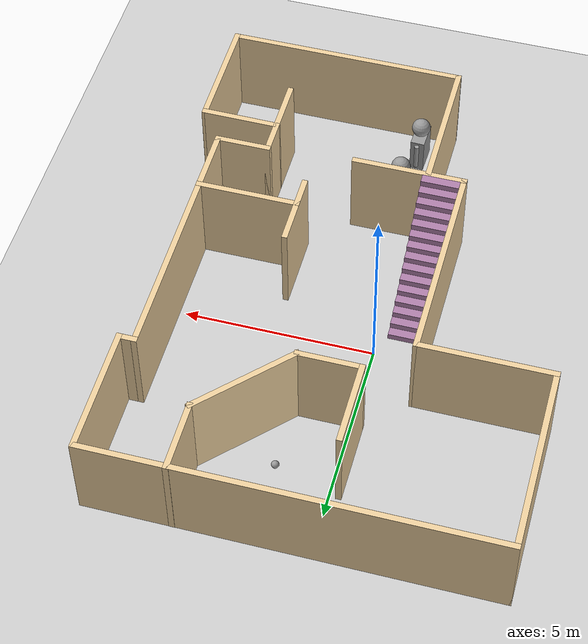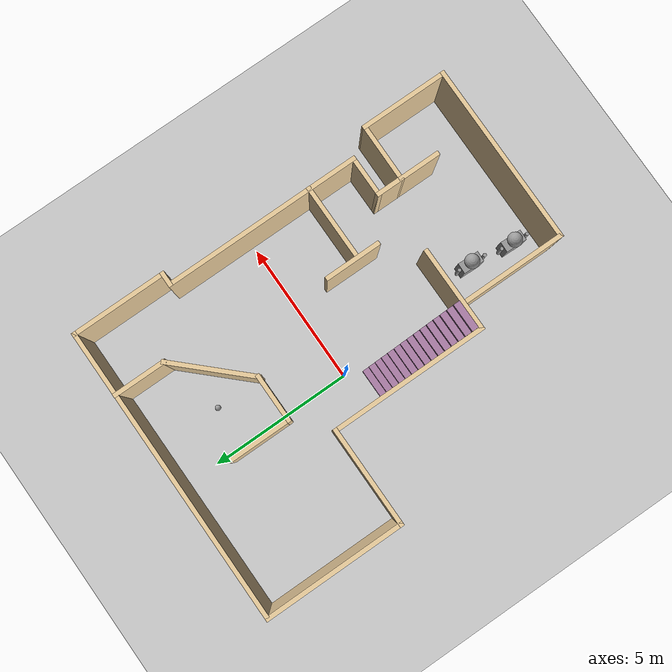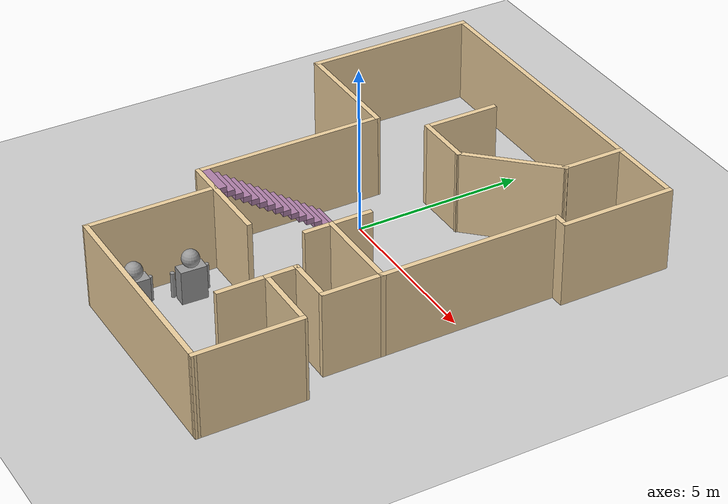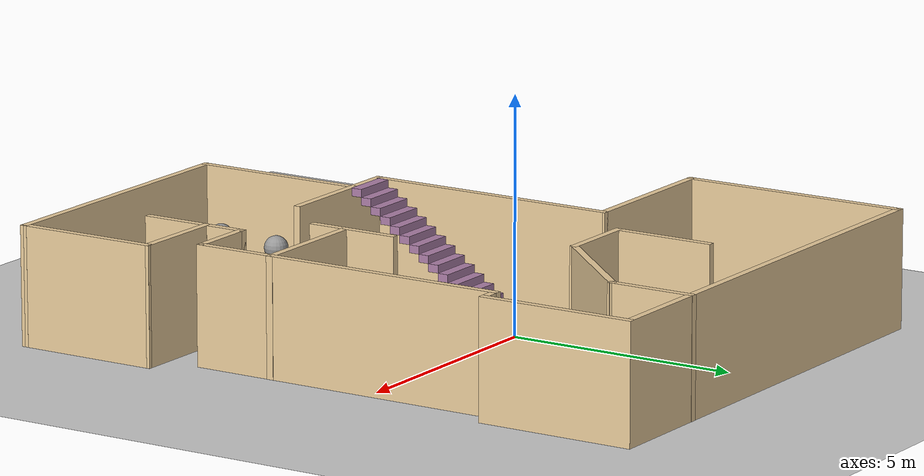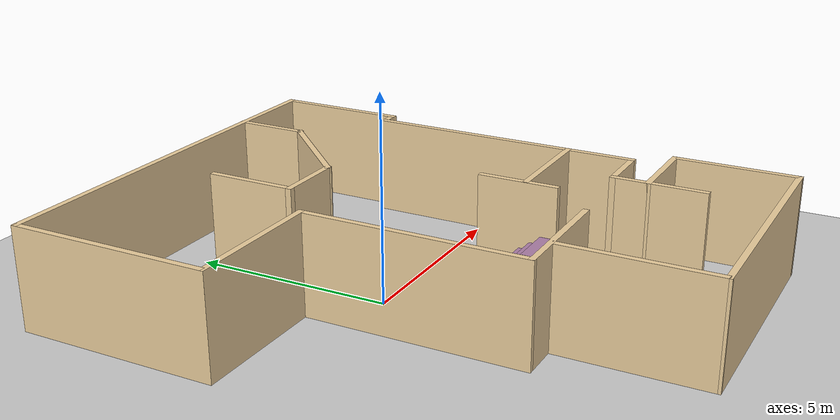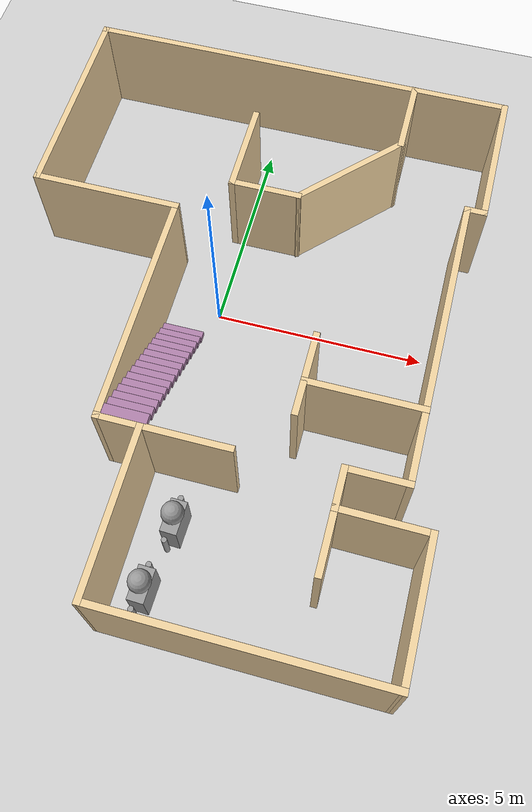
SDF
<sdf version="1.7">
 <world name="default">
  <plugin name="welcome" filename="libwelcome.so"/>
  <light name="sun" type="directional">
   <pose>0 0 10 0 -0 0</pose>
   <diffuse>0.8 0.8 0.8 1</diffuse>
   <specular>0.2 0.2 0.2 1</specular>
   <attenuation>
    <range>1000</range>
    <constant>0.9</constant>
    <linear>0.01</linear>
    <quadratic>0.001</quadratic>
   </attenuation>
   <direction>-0.5 0.1 -0.9</direction>
   <spot><inner_angle>0</inner_angle><outer_angle>0</outer_angle><falloff>0</falloff></spot>
  </light>
  <model name="ground_plane">
   <static>1</static>
   <link name="link">
    <collision name="collision">
     <geometry><plane><normal>0 0 1</normal><size>100 100</size></plane></geometry>
     <surface>
      <contact><collide_bitmask>65535</collide_bitmask></contact>
      <friction><ode><mu>100</mu><mu2>50</mu2></ode></friction>
     </surface>
    </collision>
    <visual name="visual">
     <cast_shadows>0</cast_shadows>
     <geometry><plane><normal>0 0 1</normal><size>100 100</size></plane></geometry>
     <material>
      <script><uri>file://media/materials/scripts/gazebo.material</uri><name>Gazebo/Grey</name></script>
     </material>
    </visual>
   </link>
  </model>
  <gravity>0 0 -9.8</gravity>
  <magnetic_field>6e-06 2.3e-05 -4.2e-05</magnetic_field>
  <atmosphere type="adiabatic"/>
  <physics type="ode">
   <max_step_size>0.001</max_step_size>
   <real_time_factor>1</real_time_factor>
   <real_time_update_rate>1000</real_time_update_rate>
  </physics>
  <scene><ambient>0.4 0.4 0.4 1</ambient><background>0.7 0.7 0.7 1</background><shadows>1</shadows></scene>
  <spherical_coordinates>
   <surface_model>EARTH_WGS84</surface_model>
   <latitude_deg>0</latitude_deg>
   <longitude_deg>0</longitude_deg>
   <elevation>0</elevation>
   <heading_deg>0</heading_deg>
  </spherical_coordinates>
  <model name="peachtree_apt">
   <pose>0.573213 -0.838072 0 0 -0 0</pose>
   <link name="Stairs_0">
    <visual name="Stairs_0_Visual_0">
     <pose>-1.30024 0.139353 0.083333 0 -0 0</pose>
     <geometry><box><size>1 0.233333 0.166667</size></box></geometry>
     <material>
      <script><uri>file://media/materials/scripts/gazebo.material</uri><name>Gazebo/Grey</name></script>
      <ambient>0.678431 0.498039 0.658824 1</ambient>
     </material>
     <meta><layer>0</layer></meta>
    </visual>
    <collision name="Stairs_0_Collision_0">
     <geometry><box><size>1 0.233333 0.166667</size></box></geometry>
     <pose>-1.30024 0.139353 0.083333 0 -0 0</pose>
    </collision>
    <visual name="Stairs_0_Visual_1">
     <pose>-1.30024 -0.09398 0.25 0 -0 0</pose>
     <geometry><box><size>1 0.233333 0.166667</size></box></geometry>
     <material>
      <script><uri>file://media/materials/scripts/gazebo.material</uri><name>Gazebo/Grey</name></script>
      <ambient>0.678431 0.498039 0.658824 1</ambient>
     </material>
     <meta><layer>0</layer></meta>
    </visual>
    <collision name="Stairs_0_Collision_1">
     <geometry><box><size>1 0.233333 0.166667</size></box></geometry>
     <pose>-1.30024 -0.09398 0.25 0 -0 0</pose>
    </collision>
    <visual name="Stairs_0_Visual_2">
     <pose>-1.30024 -0.327313 0.416667 0 -0 0</pose>
     <geometry><box><size>1 0.233333 0.166667</size></box></geometry>
     <material>
      <script><uri>file://media/materials/scripts/gazebo.material</uri><name>Gazebo/Grey</name></script>
      <ambient>0.678431 0.498039 0.658824 1</ambient>
     </material>
     <meta><layer>0</layer></meta>
    </visual>
    <collision name="Stairs_0_Collision_2">
     <geometry><box><size>1 0.233333 0.166667</size></box></geometry>
     <pose>-1.30024 -0.327313 0.416667 0 -0 0</pose>
    </collision>
    <visual name="Stairs_0_Visual_3">
     <pose>-1.30024 -0.560647 0.583333 0 -0 0</pose>
     <geometry><box><size>1 0.233333 0.166667</size></box></geometry>
     <material>
      <script><uri>file://media/materials/scripts/gazebo.material</uri><name>Gazebo/Grey</name></script>
      <ambient>0.678431 0.498039 0.658824 1</ambient>
     </material>
     <meta><layer>0</layer></meta>
    </visual>
    <collision name="Stairs_0_Collision_3">
     <geometry><box><size>1 0.233333 0.166667</size></box></geometry>
     <pose>-1.30024 -0.560647 0.583333 0 -0 0</pose>
    </collision>
    <visual name="Stairs_0_Visual_4">
     <pose>-1.30024 -0.79398 0.75 0 -0 0</pose>
     <geometry><box><size>1 0.233333 0.166667</size></box></geometry>
     <material>
      <script><uri>file://media/materials/scripts/gazebo.material</uri><name>Gazebo/Grey</name></script>
      <ambient>0.678431 0.498039 0.658824 1</ambient>
     </material>
     <meta><layer>0</layer></meta>
    </visual>
    <collision name="Stairs_0_Collision_4">
     <geometry><box><size>1 0.233333 0.166667</size></box></geometry>
     <pose>-1.30024 -0.79398 0.75 0 -0 0</pose>
    </collision>
    <visual name="Stairs_0_Visual_5">
     <pose>-1.30024 -1.02731 0.916667 0 -0 0</pose>
     <geometry><box><size>1 0.233333 0.166667</size></box></geometry>
     <material>
      <script><uri>file://media/materials/scripts/gazebo.material</uri><name>Gazebo/Grey</name></script>
      <ambient>0.678431 0.498039 0.658824 1</ambient>
     </material>
     <meta><layer>0</layer></meta>
    </visual>
    <collision name="Stairs_0_Collision_5">
     <geometry><box><size>1 0.233333 0.166667</size></box></geometry>
     <pose>-1.30024 -1.02731 0.916667 0 -0 0</pose>
    </collision>
    <visual name="Stairs_0_Visual_6">
     <pose>-1.30024 -1.26065 1.08333 0 -0 0</pose>
     <geometry><box><size>1 0.233333 0.166667</size></box></geometry>
     <material>
      <script><uri>file://media/materials/scripts/gazebo.material</uri><name>Gazebo/Grey</name></script>
      <ambient>0.678431 0.498039 0.658824 1</ambient>
     </material>
     <meta><layer>0</layer></meta>
    </visual>
    <collision name="Stairs_0_Collision_6">
     <geometry><box><size>1 0.233333 0.166667</size></box></geometry>
     <pose>-1.30024 -1.26065 1.08333 0 -0 0</pose>
    </collision>
    <visual name="Stairs_0_Visual_7">
     <pose>-1.30024 -1.49398 1.25 0 -0 0</pose>
     <geometry><box><size>1 0.233333 0.166667</size></box></geometry>
     <material>
      <script><uri>file://media/materials/scripts/gazebo.material</uri><name>Gazebo/Grey</name></script>
      <ambient>0.678431 0.498039 0.658824 1</ambient>
     </material>
     <meta><layer>0</layer></meta>
    </visual>
    <collision name="Stairs_0_Collision_7">
     <geometry><box><size>1 0.233333 0.166667</size></box></geometry>
     <pose>-1.30024 -1.49398 1.25 0 -0 0</pose>
    </collision>
    <visual name="Stairs_0_Visual_8">
     <pose>-1.30024 -1.72731 1.41667 0 -0 0</pose>
     <geometry><box><size>1 0.233333 0.166667</size></box></geometry>
     <material>
      <script><uri>file://media/materials/scripts/gazebo.material</uri><name>Gazebo/Grey</name></script>
      <ambient>0.678431 0.498039 0.658824 1</ambient>
     </material>
     <meta><layer>0</layer></meta>
    </visual>
    <collision name="Stairs_0_Collision_8">
     <geometry><box><size>1 0.233333 0.166667</size></box></geometry>
     <pose>-1.30024 -1.72731 1.41667 0 -0 0</pose>
    </collision>
    <visual name="Stairs_0_Visual_9">
     <pose>-1.30024 -1.96065 1.58333 0 -0 0</pose>
     <geometry><box><size>1 0.233333 0.166667</size></box></geometry>
     <material>
      <script><uri>file://media/materials/scripts/gazebo.material</uri><name>Gazebo/Grey</name></script>
      <ambient>0.678431 0.498039 0.658824 1</ambient>
     </material>
     <meta><layer>0</layer></meta>
    </visual>
    <collision name="Stairs_0_Collision_9">
     <geometry><box><size>1 0.233333 0.166667</size></box></geometry>
     <pose>-1.30024 -1.96065 1.58333 0 -0 0</pose>
    </collision>
    <visual name="Stairs_0_Visual_10">
     <pose>-1.30024 -2.19398 1.75 0 -0 0</pose>
     <geometry><box><size>1 0.233333 0.166667</size></box></geometry>
     <material>
      <script><uri>file://media/materials/scripts/gazebo.material</uri><name>Gazebo/Grey</name></script>
      <ambient>0.678431 0.498039 0.658824 1</ambient>
     </material>
     <meta><layer>0</layer></meta>
    </visual>
    <collision name="Stairs_0_Collision_10">
     <geometry><box><size>1 0.233333 0.166667</size></box></geometry>
     <pose>-1.30024 -2.19398 1.75 0 -0 0</pose>
    </collision>
    <visual name="Stairs_0_Visual_11">
     <pose>-1.30024 -2.42731 1.91667 0 -0 0</pose>
     <geometry><box><size>1 0.233333 0.166667</size></box></geometry>
     <material>
      <script><uri>file://media/materials/scripts/gazebo.material</uri><name>Gazebo/Grey</name></script>
      <ambient>0.678431 0.498039 0.658824 1</ambient>
     </material>
     <meta><layer>0</layer></meta>
    </visual>
    <collision name="Stairs_0_Collision_11">
     <geometry><box><size>1 0.233333 0.166667</size></box></geometry>
     <pose>-1.30024 -2.42731 1.91667 0 -0 0</pose>
    </collision>
    <visual name="Stairs_0_Visual_12">
     <pose>-1.30024 -2.66065 2.08333 0 -0 0</pose>
     <geometry><box><size>1 0.233333 0.166667</size></box></geometry>
     <material>
      <script><uri>file://media/materials/scripts/gazebo.material</uri><name>Gazebo/Grey</name></script>
      <ambient>0.678431 0.498039 0.658824 1</ambient>
     </material>
     <meta><layer>0</layer></meta>
    </visual>
    <collision name="Stairs_0_Collision_12">
     <geometry><box><size>1 0.233333 0.166667</size></box></geometry>
     <pose>-1.30024 -2.66065 2.08333 0 -0 0</pose>
    </collision>
    <visual name="Stairs_0_Visual_13">
     <pose>-1.30024 -2.89398 2.25 0 -0 0</pose>
     <geometry><box><size>1 0.233333 0.166667</size></box></geometry>
     <material>
      <script><uri>file://media/materials/scripts/gazebo.material</uri><name>Gazebo/Grey</name></script>
      <ambient>0.678431 0.498039 0.658824 1</ambient>
     </material>
     <meta><layer>0</layer></meta>
    </visual>
    <collision name="Stairs_0_Collision_13">
     <geometry><box><size>1 0.233333 0.166667</size></box></geometry>
     <pose>-1.30024 -2.89398 2.25 0 -0 0</pose>
    </collision>
    <visual name="Stairs_0_Visual_14">
     <pose>-1.30024 -3.12731 2.41667 0 -0 0</pose>
     <geometry><box><size>1 0.233333 0.166667</size></box></geometry>
     <material>
      <script><uri>file://media/materials/scripts/gazebo.material</uri><name>Gazebo/Grey</name></script>
      <ambient>0.678431 0.498039 0.658824 1</ambient>
     </material>
     <meta><layer>0</layer></meta>
    </visual>
    <collision name="Stairs_0_Collision_14">
     <geometry><box><size>1 0.233333 0.166667</size></box></geometry>
     <pose>-1.30024 -3.12731 2.41667 0 -0 0</pose>
    </collision>
   </link>
   <link name="Wall_0">
    <collision name="Wall_0_Collision">
     <geometry><box><size>10.5 0.15 2.5</size></box></geometry>
     <pose>0 0 1.25 0 -0 0</pose>
    </collision>
    <visual name="Wall_0_Visual">
     <pose>0 0 1.25 0 -0 0</pose>
     <geometry><box><size>10.5 0.15 2.5</size></box></geometry>
     <material>
      <script><uri>file://media/materials/scripts/gazebo.material</uri><name>Gazebo/Grey</name></script>
      <ambient>0.921569 0.807843 0.615686 1</ambient>
     </material>
     <meta><layer>0</layer></meta>
    </visual>
    <pose>-0.11479 6.96702 0 0 -0 3.14159</pose>
   </link>
   <link name="Wall_1">
    <collision name="Wall_1_Collision">
     <geometry><box><size>5 0.15 2.5</size></box></geometry>
     <pose>0 0 1.25 0 -0 0</pose>
    </collision>
    <visual name="Wall_1_Visual">
     <pose>0 0 1.25 0 -0 0</pose>
     <geometry><box><size>5 0.15 2.5</size></box></geometry>
     <material>
      <script><uri>file://media/materials/scripts/gazebo.material</uri><name>Gazebo/Grey</name></script>
      <ambient>0.921569 0.807843 0.615686 1</ambient>
     </material>
     <meta><layer>0</layer></meta>
    </visual>
    <pose>-5.28992 4.54203 0 0 -0 -1.5708</pose>
   </link>
   <link name="Wall_10">
    <collision name="Wall_10_Collision">
     <geometry><box><size>1 0.15 2.5</size></box></geometry>
     <pose>0 0 1.25 0 -0 0</pose>
    </collision>
    <visual name="Wall_10_Visual">
     <pose>0 0 1.25 0 -0 0</pose>
     <geometry><box><size>1 0.15 2.5</size></box></geometry>
     <material>
      <script><uri>file://media/materials/scripts/gazebo.material</uri><name>Gazebo/Grey</name></script>
      <ambient>0.921569 0.807843 0.615686 1</ambient>
     </material>
     <meta><layer>0</layer></meta>
    </visual>
    <pose>3.31776 -3.55357 0 0 -0 1.5708</pose>
   </link>
   <link name="Wall_11">
    <collision name="Wall_11_Collision">
     <geometry><box><size>1.5 0.15 2.5</size></box></geometry>
     <pose>0 0 1.25 0 -0 0</pose>
    </collision>
    <visual name="Wall_11_Visual">
     <pose>0 0 1.25 0 -0 0</pose>
     <geometry><box><size>1.5 0.15 2.5</size></box></geometry>
     <material>
      <script><uri>file://media/materials/scripts/gazebo.material</uri><name>Gazebo/Grey</name></script>
      <ambient>0.921569 0.807843 0.615686 1</ambient>
     </material>
     <meta><layer>0</layer></meta>
    </visual>
    <pose>3.99275 -3.12857 0 0 -0 0</pose>
   </link>
   <link name="Wall_12">
    <collision name="Wall_12_Collision">
     <geometry><box><size>7 0.15 2.5</size></box></geometry>
     <pose>0 0 1.25 0 -0 0</pose>
    </collision>
    <visual name="Wall_12_Visual">
     <pose>0 0 1.25 0 -0 0</pose>
     <geometry><box><size>7 0.15 2.5</size></box></geometry>
     <material>
      <script><uri>file://media/materials/scripts/gazebo.material</uri><name>Gazebo/Grey</name></script>
      <ambient>0.921569 0.807843 0.615686 1</ambient>
     </material>
     <meta><layer>0</layer></meta>
    </visual>
    <pose>4.66755 0.296225 0 0 -0 1.57086</pose>
   </link>
   <link name="Wall_14">
    <collision name="Wall_14_Collision">
     <geometry><box><size>0.542582 0.15 2.5</size></box></geometry>
     <pose>0 0 1.25 0 -0 0</pose>
    </collision>
    <visual name="Wall_14_Visual">
     <pose>0 0 1.25 0 -0 0</pose>
     <geometry><box><size>0.542582 0.15 2.5</size></box></geometry>
     <material>
      <script><uri>file://media/materials/scripts/gazebo.material</uri><name>Gazebo/Grey</name></script>
      <ambient>0.921569 0.807843 0.615686 1</ambient>
     </material>
     <meta><layer>0</layer></meta>
    </visual>
    <pose>4.86384 3.72102 0 0 -0 0</pose>
   </link>
   <link name="Wall_15">
    <collision name="Wall_15_Collision">
     <geometry><box><size>3.39587 0.15 2.5</size></box></geometry>
     <pose>0 0 1.25 0 -0 0</pose>
    </collision>
    <visual name="Wall_15_Visual">
     <pose>0 0 1.25 0 -0 0</pose>
     <geometry><box><size>3.39587 0.15 2.5</size></box></geometry>
     <material>
      <script><uri>file://media/materials/scripts/gazebo.material</uri><name>Gazebo/Grey</name></script>
      <ambient>0.921569 0.807843 0.615686 1</ambient>
     </material>
     <meta><layer>0</layer></meta>
    </visual>
    <pose>5.06034 5.34402 0 0 -0 1.5708</pose>
   </link>
   <link name="Wall_17">
    <collision name="Wall_17_Collision">
     <geometry><box><size>2.75 0.15 2.5</size></box></geometry>
     <pose>0 0 1.25 0 -0 0</pose>
    </collision>
    <visual name="Wall_17_Visual">
     <pose>0 0 1.25 0 -0 0</pose>
     <geometry><box><size>2.75 0.15 2.5</size></box></geometry>
     <material>
      <script><uri>file://media/materials/scripts/gazebo.material</uri><name>Gazebo/Grey</name></script>
      <ambient>0.921569 0.807843 0.615686 1</ambient>
     </material>
     <meta><layer>0</layer></meta>
    </visual>
    <pose>3.37311 -1.4639 0 0 -0 3.14159</pose>
   </link>
   <link name="Wall_19">
    <collision name="Wall_19_Collision">
     <geometry><box><size>2 0.15 2.5</size></box></geometry>
     <pose>0 0 1.25 0 -0 0</pose>
    </collision>
    <visual name="Wall_19_Visual">
     <pose>0 0 1.25 0 -0 0</pose>
     <geometry><box><size>2 0.15 2.5</size></box></geometry>
     <material>
      <script><uri>file://media/materials/scripts/gazebo.material</uri><name>Gazebo/Grey</name></script>
      <ambient>0.921569 0.807843 0.615686 1</ambient>
     </material>
     <meta><layer>0</layer></meta>
    </visual>
    <pose>2.06981 -1.27844 0 0 -0 -1.5708</pose>
   </link>
   <link name="Wall_2">
    <collision name="Wall_2_Collision">
     <geometry><box><size>3.5609 0.15 2.5</size></box></geometry>
     <pose>0 0 1.25 0 -0 0</pose>
    </collision>
    <visual name="Wall_2_Visual">
     <pose>0 0 1.25 0 -0 0</pose>
     <geometry><box><size>3.5609 0.15 2.5</size></box></geometry>
     <material>
      <script><uri>file://media/materials/scripts/gazebo.material</uri><name>Gazebo/Grey</name></script>
      <ambient>0.921569 0.807843 0.615686 1</ambient>
     </material>
     <meta><layer>0</layer></meta>
    </visual>
    <pose>-3.58447 2.11702 0 0 -0 -3e-06</pose>
   </link>
   <link name="Wall_21">
    <collision name="Wall_21_Collision">
     <geometry><box><size>1.90613 0.15 2.5</size></box></geometry>
     <pose>0 0 1.25 0 -0 0</pose>
    </collision>
    <visual name="Wall_21_Visual">
     <pose>0 0 1.25 0 -0 0</pose>
     <geometry><box><size>1.90613 0.15 2.5</size></box></geometry>
     <material>
      <script><uri>file://media/materials/scripts/gazebo.material</uri><name>Gazebo/Grey</name></script>
      <ambient>0.921569 0.807843 0.615686 1</ambient>
     </material>
     <meta><layer>0</layer></meta>
    </visual>
    <pose>2.81553 6.09508 0 0 -0 -1.57101</pose>
   </link>
   <link name="Wall_22">
    <collision name="Wall_22_Collision">
     <geometry><box><size>3.06687 0.15 2.5</size></box></geometry>
     <pose>0 0 1.25 0 -0 0</pose>
    </collision>
    <visual name="Wall_22_Visual">
     <pose>0 0 1.25 0 -0 0</pose>
     <geometry><box><size>3.06687 0.15 2.5</size></box></geometry>
     <material>
      <script><uri>file://media/materials/scripts/gazebo.material</uri><name>Gazebo/Grey</name></script>
      <ambient>0.921569 0.807843 0.615686 1</ambient>
     </material>
     <meta><layer>0</layer></meta>
    </visual>
    <pose>1.8079 4.16245 0 0 -0 -2.33334</pose>
   </link>
   <link name="Wall_23">
    <collision name="Wall_23_Collision">
     <geometry><box><size>1.75 0.15 2.5</size></box></geometry>
     <pose>0 0 1.25 0 -0 0</pose>
    </collision>
    <visual name="Wall_23_Visual">
     <pose>0 0 1.25 0 -0 0</pose>
     <geometry><box><size>1.75 0.15 2.5</size></box></geometry>
     <material>
      <script><uri>file://media/materials/scripts/gazebo.material</uri><name>Gazebo/Grey</name></script>
      <ambient>0.921569 0.807843 0.615686 1</ambient>
     </material>
     <meta><layer>0</layer></meta>
    </visual>
    <pose>0.000463 3.10789 0 0 -0 3.14159</pose>
   </link>
   <link name="Wall_24">
    <collision name="Wall_24_Collision">
     <geometry><box><size>2.25 0.15 2.5</size></box></geometry>
     <pose>0 0 1.25 0 -0 0</pose>
    </collision>
    <visual name="Wall_24_Visual">
     <pose>0 0 1.25 0 -0 0</pose>
     <geometry><box><size>2.25 0.15 2.5</size></box></geometry>
     <material>
      <script><uri>file://media/materials/scripts/gazebo.material</uri><name>Gazebo/Grey</name></script>
      <ambient>0.921569 0.807843 0.615686 1</ambient>
     </material>
     <meta><layer>0</layer></meta>
    </visual>
    <pose>-0.799537 4.15789 0 0 -0 1.5708</pose>
   </link>
   <link name="Wall_3">
    <collision name="Wall_3_Collision">
     <geometry><box><size>5.576 0.15 2.5</size></box></geometry>
     <pose>0 0 1.25 0 -0 0</pose>
    </collision>
    <visual name="Wall_3_Visual">
     <pose>0 0 1.25 0 -0 0</pose>
     <geometry><box><size>5.576 0.15 2.5</size></box></geometry>
     <material>
      <script><uri>file://media/materials/scripts/gazebo.material</uri><name>Gazebo/Grey</name></script>
      <ambient>0.921569 0.807843 0.615686 1</ambient>
     </material>
     <meta><layer>0</layer></meta>
    </visual>
    <pose>-1.87884 -0.595982 0 0 -0 -1.57073</pose>
   </link>
   <link name="Wall_33">
    <collision name="Wall_33_Collision">
     <geometry><box><size>1.5 0.15 2.5</size></box></geometry>
     <pose>0 0 1.25 0 -0 0</pose>
    </collision>
    <visual name="Wall_33_Visual">
     <pose>0 0 1.25 0 -0 0</pose>
     <geometry><box><size>1.5 0.15 2.5</size></box></geometry>
     <material>
      <script><uri>file://media/materials/scripts/gazebo.material</uri><name>Gazebo/Grey</name></script>
      <ambient>0.921569 0.807843 0.615686 1</ambient>
     </material>
     <meta><layer>0</layer></meta>
    </visual>
    <pose>3.31776 -4.65357 0 0 -0 -1.5708</pose>
   </link>
   <link name="Wall_4">
    <collision name="Wall_4_Collision">
     <geometry><box><size>3.03957 0.15 2.5</size></box></geometry>
     <pose>0 0 1.25 0 -0 0</pose>
    </collision>
    <visual name="Wall_4_Visual">
     <pose>0 0 1.25 0 -0 0</pose>
     <geometry><box><size>3.03957 0.15 2.5</size></box></geometry>
     <material>
      <script><uri>file://media/materials/scripts/gazebo.material</uri><name>Gazebo/Grey</name></script>
      <ambient>0.921569 0.807843 0.615686 1</ambient>
     </material>
     <meta><layer>0</layer></meta>
    </visual>
    <pose>-0.433663 -3.30898 0 0 -0 0</pose>
   </link>
   <link name="Wall_6">
    <collision name="Wall_6_Collision">
     <geometry><box><size>3.79894 0.15 2.5</size></box></geometry>
     <pose>0 0 1.25 0 -0 0</pose>
    </collision>
    <visual name="Wall_6_Visual">
     <pose>0 0 1.25 0 -0 0</pose>
     <geometry><box><size>3.79894 0.15 2.5</size></box></geometry>
     <material>
      <script><uri>file://media/materials/scripts/gazebo.material</uri><name>Gazebo/Grey</name></script>
      <ambient>0.921569 0.807843 0.615686 1</ambient>
     </material>
     <meta><layer>0</layer></meta>
    </visual>
    <pose>-0.932663 -5.13348 0 0 -0 -1.5708</pose>
   </link>
   <link name="Wall_7">
    <collision name="Wall_7_Collision">
     <geometry><box><size>6.37202 0.15 2.5</size></box></geometry>
     <pose>0 0 1.25 0 -0 0</pose>
    </collision>
    <visual name="Wall_7_Visual">
     <pose>0 0 1.25 0 -0 0</pose>
     <geometry><box><size>6.37202 0.15 2.5</size></box></geometry>
     <material>
      <script><uri>file://media/materials/scripts/gazebo.material</uri><name>Gazebo/Grey</name></script>
      <ambient>0.921569 0.807843 0.615686 1</ambient>
     </material>
     <meta><layer>0</layer></meta>
    </visual>
    <pose>2.17834 -6.96548 0 0 -0 -0.002411</pose>
   </link>
   <link name="Wall_8">
    <collision name="Wall_8_Collision">
     <geometry><box><size>3.12895 0.15 2.5</size></box></geometry>
     <pose>0 0 1.25 0 -0 0</pose>
    </collision>
    <visual name="Wall_8_Visual">
     <pose>0 0 1.25 0 -0 0</pose>
     <geometry><box><size>3.12895 0.15 2.5</size></box></geometry>
     <material>
      <script><uri>file://media/materials/scripts/gazebo.material</uri><name>Gazebo/Grey</name></script>
      <ambient>0.921569 0.807843 0.615686 1</ambient>
     </material>
     <meta><layer>0</layer></meta>
    </visual>
    <pose>5.28934 -5.48348 0 0 -0 1.5708</pose>
   </link>
   <link name="Wall_9">
    <collision name="Wall_9_Collision">
     <geometry><box><size>2.12164 0.15 2.5</size></box></geometry>
     <pose>0 0 1.25 0 -0 0</pose>
    </collision>
    <visual name="Wall_9_Visual">
     <pose>0 0 1.25 0 -0 0</pose>
     <geometry><box><size>2.12164 0.15 2.5</size></box></geometry>
     <material>
      <script><uri>file://media/materials/scripts/gazebo.material</uri><name>Gazebo/Grey</name></script>
      <ambient>0.921569 0.807843 0.615686 1</ambient>
     </material>
     <meta><layer>0</layer></meta>
    </visual>
    <pose>4.30355 -3.98628 0 0 -0 3.13377</pose>
   </link>
   <static>1</static>
  </model>
  <model name="tim">
   <link name="link_0">
    <inertial>
     <mass>1</mass>
     <inertia>
      <ixx>0.166667</ixx>
      <ixy>0</ixy>
      <ixz>0</ixz>
      <iyy>0.166667</iyy>
      <iyz>0</iyz>
      <izz>0.166667</izz>
     </inertia>
    </inertial>
    <pose>0.009688 0.019375 -0.3675 0 -0 0</pose>
    <visual name="visual">
     <geometry><box><size>0.375 0.75 1</size></box></geometry>
     <material>
      <lighting>1</lighting>
      <script><uri>file://media/materials/scripts/gazebo.material</uri><name>Gazebo/Grey</name></script>
      <shader type="pixel"><normal_map>__default__</normal_map></shader>
      <ambient>0.3 0.3 0.3 1</ambient>
      <diffuse>0.7 0.7 0.7 1</diffuse>
      <specular>0.01 0.01 0.01 1</specular>
      <emissive>0 0 0 1</emissive>
     </material>
    </visual>
    <collision name="collision">
     <geometry><box><size>0.375 0.75 1</size></box></geometry>
     <surface>
      <friction>
       <ode><mu>1</mu><mu2>1</mu2><fdir1>0 0 0</fdir1><slip1>0</slip1><slip2>0</slip2></ode>
       <torsional>
        <coefficient>1</coefficient>
        <patch_radius>0</patch_radius>
        <surface_radius>0</surface_radius>
        <use_patch_radius>1</use_patch_radius>
        <ode><slip>0</slip></ode>
       </torsional>
      </friction>
      <bounce><restitution_coefficient>0</restitution_coefficient><threshold>1e+06</threshold></bounce>
      <contact>
       <collide_without_contact>0</collide_without_contact>
       <collide_without_contact_bitmask>1</collide_without_contact_bitmask>
       <collide_bitmask>1</collide_bitmask>
       <ode>
        <soft_cfm>0</soft_cfm>
        <soft_erp>0.2</soft_erp>
        <kp>1e+13</kp>
        <kd>1</kd>
        <max_vel>0.01</max_vel>
        <min_depth>0</min_depth>
       </ode>
       <bullet>
        <split_impulse>1</split_impulse>
        <split_impulse_penetration_threshold>-0.01</split_impulse_penetration_threshold>
        <soft_cfm>0</soft_cfm>
        <soft_erp>0.2</soft_erp>
        <kp>1e+13</kp>
        <kd>1</kd>
       </bullet>
      </contact>
     </surface>
    </collision>
   </link>
   <link name="link_4">
    <inertial>
     <mass>1</mass>
     <inertia><ixx>0.1</ixx><ixy>0</ixy><ixz>0</ixz><iyy>0.1</iyy><iyz>0</iyz><izz>0.1</izz></inertia>
    </inertial>
    <pose>0.009688 0.019375 0.3825 0 -0 0</pose>
    <visual name="visual">
     <geometry><sphere><radius>0.25</radius></sphere></geometry>
     <material>
      <lighting>1</lighting>
      <script><uri>file://media/materials/scripts/gazebo.material</uri><name>Gazebo/Grey</name></script>
      <shader type="pixel"><normal_map>__default__</normal_map></shader>
      <ambient>0.3 0.3 0.3 1</ambient>
      <diffuse>0.7 0.7 0.7 1</diffuse>
      <specular>0.01 0.01 0.01 1</specular>
      <emissive>0 0 0 1</emissive>
     </material>
    </visual>
    <collision name="collision">
     <geometry><sphere><radius>0.25</radius></sphere></geometry>
     <surface>
      <friction>
       <ode><mu>1</mu><mu2>1</mu2><fdir1>0 0 0</fdir1><slip1>0</slip1><slip2>0</slip2></ode>
       <torsional>
        <coefficient>1</coefficient>
        <patch_radius>0</patch_radius>
        <surface_radius>0</surface_radius>
        <use_patch_radius>1</use_patch_radius>
        <ode><slip>0</slip></ode>
       </torsional>
      </friction>
      <bounce><restitution_coefficient>0</restitution_coefficient><threshold>1e+06</threshold></bounce>
      <contact>
       <collide_without_contact>0</collide_without_contact>
       <collide_without_contact_bitmask>1</collide_without_contact_bitmask>
       <collide_bitmask>1</collide_bitmask>
       <ode>
        <soft_cfm>0</soft_cfm>
        <soft_erp>0.2</soft_erp>
        <kp>1e+13</kp>
        <kd>1</kd>
        <max_vel>0.01</max_vel>
        <min_depth>0</min_depth>
       </ode>
       <bullet>
        <split_impulse>1</split_impulse>
        <split_impulse_penetration_threshold>-0.01</split_impulse_penetration_threshold>
        <soft_cfm>0</soft_cfm>
        <soft_erp>0.2</soft_erp>
        <kp>1e+13</kp>
        <kd>1</kd>
       </bullet>
      </contact>
     </surface>
    </collision>
   </link>
   <link name="link_5">
    <inertial>
     <mass>1</mass>
     <inertia><ixx>0.145833</ixx><ixy>0</ixy><ixz>0</ixz><iyy>0.145833</iyy><iyz>0</iyz><izz>0.125</izz></inertia>
    </inertial>
    <pose>-0.029063 -0.495625 -0.0075 0 -0 0</pose>
    <visual name="visual">
     <pose>0 0 -0.3 0 -0 0</pose>
     <geometry><cylinder><radius>0.0625</radius><length>0.75</length></cylinder></geometry>
     <material>
      <lighting>1</lighting>
      <script><uri>file://media/materials/scripts/gazebo.material</uri><name>Gazebo/Grey</name></script>
      <shader type="pixel"><normal_map>__default__</normal_map></shader>
      <ambient>0.3 0.3 0.3 1</ambient>
      <diffuse>0.7 0.7 0.7 1</diffuse>
      <specular>0.01 0.01 0.01 1</specular>
      <emissive>0 0 0 1</emissive>
     </material>
    </visual>
    <collision name="collision">
     <pose>0 0 -0.3 0 -0 0</pose>
     <geometry><cylinder><radius>0.0625</radius><length>0.75</length></cylinder></geometry>
     <surface>
      <friction>
       <ode><mu>1</mu><mu2>1</mu2><fdir1>0 0 0</fdir1><slip1>0</slip1><slip2>0</slip2></ode>
       <torsional>
        <coefficient>1</coefficient>
        <patch_radius>0</patch_radius>
        <surface_radius>0</surface_radius>
        <use_patch_radius>1</use_patch_radius>
        <ode><slip>0</slip></ode>
       </torsional>
      </friction>
      <bounce><restitution_coefficient>0</restitution_coefficient><threshold>1e+06</threshold></bounce>
      <contact>
       <collide_without_contact>0</collide_without_contact>
       <collide_without_contact_bitmask>1</collide_without_contact_bitmask>
       <collide_bitmask>1</collide_bitmask>
       <ode>
        <soft_cfm>0</soft_cfm>
        <soft_erp>0.2</soft_erp>
        <kp>1e+13</kp>
        <kd>1</kd>
        <max_vel>0.01</max_vel>
        <min_depth>0</min_depth>
       </ode>
       <bullet>
        <split_impulse>1</split_impulse>
        <split_impulse_penetration_threshold>-0.01</split_impulse_penetration_threshold>
        <soft_cfm>0</soft_cfm>
        <soft_erp>0.2</soft_erp>
        <kp>1e+13</kp>
        <kd>1</kd>
       </bullet>
      </contact>
     </surface>
    </collision>
   </link>
   <link name="link_5_clone">
    <inertial>
     <mass>1</mass>
     <inertia><ixx>0.145833</ixx><ixy>0</ixy><ixz>0</ixz><iyy>0.145833</iyy><iyz>0</iyz><izz>0.125</izz></inertia>
    </inertial>
    <pose>0.009688 0.456875 -0.0075 0 -0 0</pose>
    <visual name="visual">
     <pose>0 0 -0.3 0 -0 0</pose>
     <geometry><cylinder><radius>0.0625</radius><length>0.75</length></cylinder></geometry>
     <material>
      <lighting>1</lighting>
      <script><uri>file://media/materials/scripts/gazebo.material</uri><name>Gazebo/Grey</name></script>
      <shader type="pixel"><normal_map>__default__</normal_map></shader>
      <ambient>0.3 0.3 0.3 1</ambient>
      <diffuse>0.7 0.7 0.7 1</diffuse>
      <specular>0.01 0.01 0.01 1</specular>
      <emissive>0 0 0 1</emissive>
     </material>
    </visual>
    <collision name="collision">
     <pose>0 0 -0.3 0 -0 0</pose>
     <geometry><cylinder><radius>0.0625</radius><length>0.75</length></cylinder></geometry>
     <surface>
      <friction>
       <ode><mu>1</mu><mu2>1</mu2><fdir1>0 0 0</fdir1><slip1>0</slip1><slip2>0</slip2></ode>
       <torsional>
        <coefficient>1</coefficient>
        <patch_radius>0</patch_radius>
        <surface_radius>0</surface_radius>
        <use_patch_radius>1</use_patch_radius>
        <ode><slip>0</slip></ode>
       </torsional>
      </friction>
      <bounce><restitution_coefficient>0</restitution_coefficient><threshold>1e+06</threshold></bounce>
      <contact>
       <collide_without_contact>0</collide_without_contact>
       <collide_without_contact_bitmask>1</collide_without_contact_bitmask>
       <collide_bitmask>1</collide_bitmask>
       <ode>
        <soft_cfm>0</soft_cfm>
        <soft_erp>0.2</soft_erp>
        <kp>1e+13</kp>
        <kd>1</kd>
        <max_vel>0.01</max_vel>
        <min_depth>0</min_depth>
       </ode>
       <bullet>
        <split_impulse>1</split_impulse>
        <split_impulse_penetration_threshold>-0.01</split_impulse_penetration_threshold>
        <soft_cfm>0</soft_cfm>
        <soft_erp>0.2</soft_erp>
        <kp>1e+13</kp>
        <kd>1</kd>
       </bullet>
      </contact>
     </surface>
    </collision>
   </link>
   <joint name="link_0_JOINT_2" type="fixed">
    <parent>link_0</parent>
    <child>link_4</child>
    <physics>
     <ode><limit><cfm>0</cfm><erp>0.2</erp></limit><suspension><cfm>0</cfm><erp>0.2</erp></suspension></ode>
    </physics>
   </joint>
   <joint name="link_0_JOINT_4" type="revolute">
    <parent>link_0</parent>
    <child>link_5</child>
    <axis>
     <xyz>0 1 0</xyz>
     <limit>
      <lower>-1.79769e+308</lower>
      <upper>1.79769e+308</upper>
      <effort>-1</effort>
      <velocity>-1</velocity>
     </limit>
     <dynamics>
      <spring_reference>0</spring_reference>
      <spring_stiffness>0</spring_stiffness>
      <damping>0</damping>
     </dynamics>
    </axis>
    <physics>
     <ode><limit><cfm>0</cfm><erp>0.2</erp></limit><suspension><cfm>0</cfm><erp>0.2</erp></suspension></ode>
    </physics>
   </joint>
   <joint name="link_0_JOINT_8" type="revolute">
    <parent>link_0</parent>
    <child>link_5_clone</child>
    <axis>
     <xyz>0 1 0</xyz>
     <limit>
      <lower>-1.79769e+308</lower>
      <upper>1.79769e+308</upper>
      <effort>-1</effort>
      <velocity>-1</velocity>
     </limit>
     <dynamics>
      <spring_reference>0</spring_reference>
      <spring_stiffness>0</spring_stiffness>
      <damping>0</damping>
     </dynamics>
    </axis>
    <physics>
     <ode><limit><cfm>0</cfm><erp>0.2</erp></limit><suspension><cfm>0</cfm><erp>0.2</erp></suspension></ode>
    </physics>
   </joint>
   <static>0</static>
   <pose>0.605266 -5.39418 0.8675 0 1e-06 -0.032471</pose>
  </model>
  <model name="tim_0">
   <link name="link_0">
    <inertial>
     <mass>1</mass>
     <inertia>
      <ixx>0.166667</ixx>
      <ixy>0</ixy>
      <ixz>0</ixz>
      <iyy>0.166667</iyy>
      <iyz>0</iyz>
      <izz>0.166667</izz>
     </inertia>
    </inertial>
    <pose>0.009688 0.019375 -0.3675 0 -0 0</pose>
    <visual name="visual">
     <geometry><box><size>0.375 0.75 1</size></box></geometry>
     <material>
      <lighting>1</lighting>
      <script><uri>file://media/materials/scripts/gazebo.material</uri><name>Gazebo/Grey</name></script>
      <shader type="pixel"><normal_map>__default__</normal_map></shader>
      <ambient>0.3 0.3 0.3 1</ambient>
      <diffuse>0.7 0.7 0.7 1</diffuse>
      <specular>0.01 0.01 0.01 1</specular>
      <emissive>0 0 0 1</emissive>
     </material>
    </visual>
    <collision name="collision">
     <geometry><box><size>0.375 0.75 1</size></box></geometry>
     <surface>
      <friction>
       <ode><mu>1</mu><mu2>1</mu2><fdir1>0 0 0</fdir1><slip1>0</slip1><slip2>0</slip2></ode>
       <torsional>
        <coefficient>1</coefficient>
        <patch_radius>0</patch_radius>
        <surface_radius>0</surface_radius>
        <use_patch_radius>1</use_patch_radius>
        <ode><slip>0</slip></ode>
       </torsional>
      </friction>
      <bounce><restitution_coefficient>0</restitution_coefficient><threshold>1e+06</threshold></bounce>
      <contact>
       <collide_without_contact>0</collide_without_contact>
       <collide_without_contact_bitmask>1</collide_without_contact_bitmask>
       <collide_bitmask>1</collide_bitmask>
       <ode>
        <soft_cfm>0</soft_cfm>
        <soft_erp>0.2</soft_erp>
        <kp>1e+13</kp>
        <kd>1</kd>
        <max_vel>0.01</max_vel>
        <min_depth>0</min_depth>
       </ode>
       <bullet>
        <split_impulse>1</split_impulse>
        <split_impulse_penetration_threshold>-0.01</split_impulse_penetration_threshold>
        <soft_cfm>0</soft_cfm>
        <soft_erp>0.2</soft_erp>
        <kp>1e+13</kp>
        <kd>1</kd>
       </bullet>
      </contact>
     </surface>
    </collision>
   </link>
   <link name="link_4">
    <inertial>
     <mass>1</mass>
     <inertia><ixx>0.1</ixx><ixy>0</ixy><ixz>0</ixz><iyy>0.1</iyy><iyz>0</iyz><izz>0.1</izz></inertia>
    </inertial>
    <pose>0.009688 0.019375 0.3825 0 -0 0</pose>
    <visual name="visual">
     <geometry><sphere><radius>0.25</radius></sphere></geometry>
     <material>
      <lighting>1</lighting>
      <script><uri>file://media/materials/scripts/gazebo.material</uri><name>Gazebo/Grey</name></script>
      <shader type="pixel"><normal_map>__default__</normal_map></shader>
      <ambient>0.3 0.3 0.3 1</ambient>
      <diffuse>0.7 0.7 0.7 1</diffuse>
      <specular>0.01 0.01 0.01 1</specular>
      <emissive>0 0 0 1</emissive>
     </material>
    </visual>
    <collision name="collision">
     <geometry><sphere><radius>0.25</radius></sphere></geometry>
     <surface>
      <friction>
       <ode><mu>1</mu><mu2>1</mu2><fdir1>0 0 0</fdir1><slip1>0</slip1><slip2>0</slip2></ode>
       <torsional>
        <coefficient>1</coefficient>
        <patch_radius>0</patch_radius>
        <surface_radius>0</surface_radius>
        <use_patch_radius>1</use_patch_radius>
        <ode><slip>0</slip></ode>
       </torsional>
      </friction>
      <bounce><restitution_coefficient>0</restitution_coefficient><threshold>1e+06</threshold></bounce>
      <contact>
       <collide_without_contact>0</collide_without_contact>
       <collide_without_contact_bitmask>1</collide_without_contact_bitmask>
       <collide_bitmask>1</collide_bitmask>
       <ode>
        <soft_cfm>0</soft_cfm>
        <soft_erp>0.2</soft_erp>
        <kp>1e+13</kp>
        <kd>1</kd>
        <max_vel>0.01</max_vel>
        <min_depth>0</min_depth>
       </ode>
       <bullet>
        <split_impulse>1</split_impulse>
        <split_impulse_penetration_threshold>-0.01</split_impulse_penetration_threshold>
        <soft_cfm>0</soft_cfm>
        <soft_erp>0.2</soft_erp>
        <kp>1e+13</kp>
        <kd>1</kd>
       </bullet>
      </contact>
     </surface>
    </collision>
   </link>
   <link name="link_5">
    <inertial>
     <mass>1</mass>
     <inertia><ixx>0.145833</ixx><ixy>0</ixy><ixz>0</ixz><iyy>0.145833</iyy><iyz>0</iyz><izz>0.125</izz></inertia>
    </inertial>
    <pose>-0.029063 -0.495625 -0.0075 0 -0 0</pose>
    <visual name="visual">
     <pose>0 0 -0.3 0 -0 0</pose>
     <geometry><cylinder><radius>0.0625</radius><length>0.75</length></cylinder></geometry>
     <material>
      <lighting>1</lighting>
      <script><uri>file://media/materials/scripts/gazebo.material</uri><name>Gazebo/Grey</name></script>
      <shader type="pixel"><normal_map>__default__</normal_map></shader>
      <ambient>0.3 0.3 0.3 1</ambient>
      <diffuse>0.7 0.7 0.7 1</diffuse>
      <specular>0.01 0.01 0.01 1</specular>
      <emissive>0 0 0 1</emissive>
     </material>
    </visual>
    <collision name="collision">
     <pose>0 0 -0.3 0 -0 0</pose>
     <geometry><cylinder><radius>0.0625</radius><length>0.75</length></cylinder></geometry>
     <surface>
      <friction>
       <ode><mu>1</mu><mu2>1</mu2><fdir1>0 0 0</fdir1><slip1>0</slip1><slip2>0</slip2></ode>
       <torsional>
        <coefficient>1</coefficient>
        <patch_radius>0</patch_radius>
        <surface_radius>0</surface_radius>
        <use_patch_radius>1</use_patch_radius>
        <ode><slip>0</slip></ode>
       </torsional>
      </friction>
      <bounce><restitution_coefficient>0</restitution_coefficient><threshold>1e+06</threshold></bounce>
      <contact>
       <collide_without_contact>0</collide_without_contact>
       <collide_without_contact_bitmask>1</collide_without_contact_bitmask>
       <collide_bitmask>1</collide_bitmask>
       <ode>
        <soft_cfm>0</soft_cfm>
        <soft_erp>0.2</soft_erp>
        <kp>1e+13</kp>
        <kd>1</kd>
        <max_vel>0.01</max_vel>
        <min_depth>0</min_depth>
       </ode>
       <bullet>
        <split_impulse>1</split_impulse>
        <split_impulse_penetration_threshold>-0.01</split_impulse_penetration_threshold>
        <soft_cfm>0</soft_cfm>
        <soft_erp>0.2</soft_erp>
        <kp>1e+13</kp>
        <kd>1</kd>
       </bullet>
      </contact>
     </surface>
    </collision>
   </link>
   <link name="link_5_clone">
    <inertial>
     <mass>1</mass>
     <inertia><ixx>0.145833</ixx><ixy>0</ixy><ixz>0</ixz><iyy>0.145833</iyy><iyz>0</iyz><izz>0.125</izz></inertia>
    </inertial>
    <pose>0.009688 0.456875 -0.0075 0 -0 0</pose>
    <visual name="visual">
     <pose>0 0 -0.3 0 -0 0</pose>
     <geometry><cylinder><radius>0.0625</radius><length>0.75</length></cylinder></geometry>
     <material>
      <lighting>1</lighting>
      <script><uri>file://media/materials/scripts/gazebo.material</uri><name>Gazebo/Grey</name></script>
      <shader type="pixel"><normal_map>__default__</normal_map></shader>
      <ambient>0.3 0.3 0.3 1</ambient>
      <diffuse>0.7 0.7 0.7 1</diffuse>
      <specular>0.01 0.01 0.01 1</specular>
      <emissive>0 0 0 1</emissive>
     </material>
    </visual>
    <collision name="collision">
     <pose>0 0 -0.3 0 -0 0</pose>
     <geometry><cylinder><radius>0.0625</radius><length>0.75</length></cylinder></geometry>
     <surface>
      <friction>
       <ode><mu>1</mu><mu2>1</mu2><fdir1>0 0 0</fdir1><slip1>0</slip1><slip2>0</slip2></ode>
       <torsional>
        <coefficient>1</coefficient>
        <patch_radius>0</patch_radius>
        <surface_radius>0</surface_radius>
        <use_patch_radius>1</use_patch_radius>
        <ode><slip>0</slip></ode>
       </torsional>
      </friction>
      <bounce><restitution_coefficient>0</restitution_coefficient><threshold>1e+06</threshold></bounce>
      <contact>
       <collide_without_contact>0</collide_without_contact>
       <collide_without_contact_bitmask>1</collide_without_contact_bitmask>
       <collide_bitmask>1</collide_bitmask>
       <ode>
        <soft_cfm>0</soft_cfm>
        <soft_erp>0.2</soft_erp>
        <kp>1e+13</kp>
        <kd>1</kd>
        <max_vel>0.01</max_vel>
        <min_depth>0</min_depth>
       </ode>
       <bullet>
        <split_impulse>1</split_impulse>
        <split_impulse_penetration_threshold>-0.01</split_impulse_penetration_threshold>
        <soft_cfm>0</soft_cfm>
        <soft_erp>0.2</soft_erp>
        <kp>1e+13</kp>
        <kd>1</kd>
       </bullet>
      </contact>
     </surface>
    </collision>
   </link>
   <joint name="link_0_JOINT_2" type="fixed">
    <parent>link_0</parent>
    <child>link_4</child>
    <physics>
     <ode><limit><cfm>0</cfm><erp>0.2</erp></limit><suspension><cfm>0</cfm><erp>0.2</erp></suspension></ode>
    </physics>
   </joint>
   <joint name="link_0_JOINT_4" type="revolute">
    <parent>link_0</parent>
    <child>link_5</child>
    <axis>
     <xyz>0 1 0</xyz>
     <limit>
      <lower>-1.79769e+308</lower>
      <upper>1.79769e+308</upper>
      <effort>-1</effort>
      <velocity>-1</velocity>
     </limit>
     <dynamics>
      <spring_reference>0</spring_reference>
      <spring_stiffness>0</spring_stiffness>
      <damping>0</damping>
     </dynamics>
    </axis>
    <physics>
     <ode><limit><cfm>0</cfm><erp>0.2</erp></limit><suspension><cfm>0</cfm><erp>0.2</erp></suspension></ode>
    </physics>
   </joint>
   <joint name="link_0_JOINT_8" type="revolute">
    <parent>link_0</parent>
    <child>link_5_clone</child>
    <axis>
     <xyz>0 1 0</xyz>
     <limit>
      <lower>-1.79769e+308</lower>
      <upper>1.79769e+308</upper>
      <effort>-1</effort>
      <velocity>-1</velocity>
     </limit>
     <dynamics>
      <spring_reference>0</spring_reference>
      <spring_stiffness>0</spring_stiffness>
      <damping>0</damping>
     </dynamics>
    </axis>
    <physics>
     <ode><limit><cfm>0</cfm><erp>0.2</erp></limit><suspension><cfm>0</cfm><erp>0.2</erp></suspension></ode>
    </physics>
   </joint>
   <static>0</static>
   <pose>0.390881 -6.91552 0.8675 -1e-06 -2e-06 -0.031694</pose>
  </model>
  <model name="my_ball">
   <link name="link_0">
    <inertial>
     <mass>1</mass>
     <inertia><ixx>0.1</ixx><ixy>0</ixy><ixz>0</ixz><iyy>0.1</iyy><iyz>0</iyz><izz>0.1</izz></inertia>
    </inertial>
    <visual name="visual">
     <geometry><sphere><radius>0.1</radius></sphere></geometry>
     <material>
      <lighting>1</lighting>
      <script><uri>file://media/materials/scripts/gazebo.material</uri><name>Gazebo/Grey</name></script>
      <shader type="pixel"><normal_map>__default__</normal_map></shader>
      <ambient>1 1 1 1</ambient>
      <diffuse>1 1 1 1</diffuse>
      <specular>1 1 1 1</specular>
      <emissive>1 1 1 1</emissive>
     </material>
    </visual>
    <collision name="collision">
     <geometry><sphere><radius>0.1</radius></sphere></geometry>
     <surface>
      <friction>
       <ode><mu>1</mu><mu2>1</mu2><fdir1>0 0 0</fdir1><slip1>0</slip1><slip2>0</slip2></ode>
       <torsional>
        <coefficient>1</coefficient>
        <patch_radius>0</patch_radius>
        <surface_radius>0</surface_radius>
        <use_patch_radius>1</use_patch_radius>
        <ode><slip>0</slip></ode>
       </torsional>
      </friction>
      <bounce><restitution_coefficient>0</restitution_coefficient><threshold>1e+06</threshold></bounce>
      <contact>
       <collide_without_contact>0</collide_without_contact>
       <collide_without_contact_bitmask>1</collide_without_contact_bitmask>
       <collide_bitmask>1</collide_bitmask>
       <ode>
        <soft_cfm>0</soft_cfm>
        <soft_erp>0.2</soft_erp>
        <kp>1e+13</kp>
        <kd>1</kd>
        <max_vel>0.01</max_vel>
        <min_depth>0</min_depth>
       </ode>
       <bullet>
        <split_impulse>1</split_impulse>
        <split_impulse_penetration_threshold>-0.01</split_impulse_penetration_threshold>
        <soft_cfm>0</soft_cfm>
        <soft_erp>0.2</soft_erp>
        <kp>1e+13</kp>
        <kd>1</kd>
       </bullet>
      </contact>
     </surface>
    </collision>
   </link>
   <static>0</static>
   <pose>1.48272 3.93907 0.1 0 -0 0</pose>
  </model>
 </world>
</sdf>
